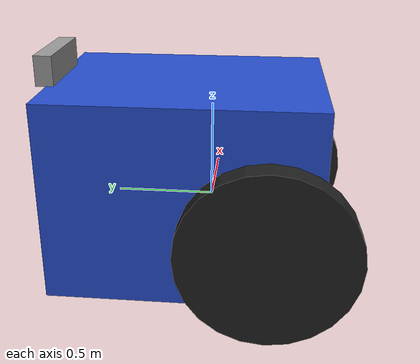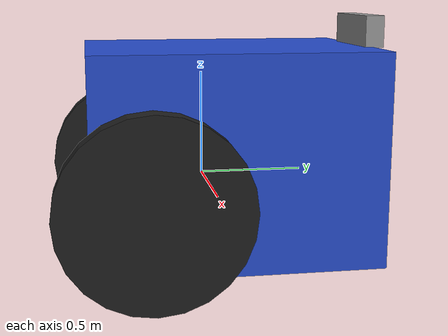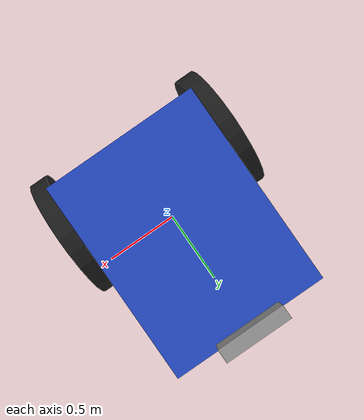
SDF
<?xml version='1.0'?>
<sdf version='1.6'>
  <model name='vehicle_model'>
    <link name='link_1'>
      <pose frame=''>0 0.11625 0.1275 0 -0 0</pose>
      <inertial>
        <mass>0.05</mass>
        <pose frame=''>0 0 0 0 -0 0</pose>
        <inertia>
          <ixx>1</ixx>
          <ixy>0</ixy>
          <ixz>0</ixz>
          <iyy>1</iyy>
          <iyz>0</iyz>
          <izz>1</izz>
        </inertia>
      </inertial>
      <self_collide>0</self_collide>
      <kinematic>0</kinematic>
      <gravity>1</gravity>
      <visual name='visual'>
        <pose frame=''>0 0 0 0 -0 0</pose>
        <geometry>
          <box>
            <size>1.03 1.35 1</size>
          </box>
        </geometry>
        <material>
          <lighting>1</lighting>
          <script>
            <uri>file://media/materials/scripts/gazebo.material</uri>
            <name>Gazebo/Blue</name>
          </script>
          <ambient>0.3 0.3 0.3 1</ambient>
          <diffuse>0.7 0.7 0.7 1</diffuse>
          <specular>0.01 0.01 0.01 1</specular>
          <emissive>0 0 0 1</emissive>
          <shader type='vertex'>
            <normal_map>__default__</normal_map>
          </shader>
        </material>
        <cast_shadows>1</cast_shadows>
        <transparency>0</transparency>
      </visual>
      <visual name='ModelPreview_0::link_1::visual_1'>
        <pose frame=''>0 0 0 0 -0 0</pose>
        <geometry>
          <box>
            <size>1.03 1.35 1</size>
          </box>
        </geometry>
        <material>
          <lighting>1</lighting>
          <script>
            <uri>file://media/materials/scripts/gazebo.material</uri>
            <name>Gazebo/Grey</name>
          </script>
          <ambient>0.3 0.3 0.3 1</ambient>
          <diffuse>0.7 0.7 0.7 1</diffuse>
          <specular>0.01 0.01 0.01 1</specular>
          <emissive>0 0 0 1</emissive>
          <shader type='vertex'>
            <normal_map>__default__</normal_map>
          </shader>
        </material>
        <cast_shadows>1</cast_shadows>
        <transparency>0</transparency>
      </visual>
      <collision name='collision'>
        <laser_retro>0</laser_retro>
        <max_contacts>10</max_contacts>
        <pose frame=''>0 0 0 0 -0 0</pose>
        <geometry>
          <box>
            <size>1.03 1.35 1</size>
          </box>
        </geometry>
        <surface>
          <friction>
            <ode>
              <mu>1</mu>
              <mu2>1</mu2>
              <fdir1>0 0 0</fdir1>
              <slip1>0</slip1>
              <slip2>0</slip2>
            </ode>
            <torsional>
              <coefficient>1</coefficient>
              <patch_radius>0</patch_radius>
              <surface_radius>0</surface_radius>
              <use_patch_radius>1</use_patch_radius>
              <ode>
                <slip>0</slip>
              </ode>
            </torsional>
          </friction>
          <bounce>
            <restitution_coefficient>0</restitution_coefficient>
            <threshold>1e+06</threshold>
          </bounce>
          <contact>
            <collide_without_contact>0</collide_without_contact>
            <collide_without_contact_bitmask>1</collide_without_contact_bitmask>
            <collide_bitmask>1</collide_bitmask>
            <ode>
              <soft_cfm>0</soft_cfm>
              <soft_erp>0.2</soft_erp>
              <kp>1e+13</kp>
              <kd>1</kd>
              <max_vel>0.01</max_vel>
              <min_depth>0</min_depth>
            </ode>
            <bullet>
              <split_impulse>1</split_impulse>
              <split_impulse_penetration_threshold>-0.01</split_impulse_penetration_threshold>
              <soft_cfm>0</soft_cfm>
              <soft_erp>0.2</soft_erp>
              <kp>1e+13</kp>
              <kd>1</kd>
            </bullet>
          </contact>
        </surface>
      </collision>
    </link>
    <link name='link_0'>
      <pose frame=''>0.6 -0.28375 -0.0425 0 -0 0</pose>
      <inertial>
        <mass>5</mass>
        <pose frame=''>0 0 0 0 1.57079 0</pose>
        <inertia>
          <ixx>1</ixx>
          <ixy>0</ixy>
          <ixz>0</ixz>
          <iyy>1</iyy>
          <iyz>0</iyz>
          <izz>1</izz>
        </inertia>
      </inertial>
      <self_collide>0</self_collide>
      <kinematic>0</kinematic>
      <visual name='visual'>
        <pose frame=''>0 0 0 0 1.57079 0</pose>
        <geometry>
          <cylinder>
            <radius>0.44</radius>
            <length>0.127562</length>
          </cylinder>
        </geometry>
        <material>
          <lighting>1</lighting>
          <script>
            <uri>file://media/materials/scripts/gazebo.material</uri>
            <name>Gazebo/Black</name>
          </script>
          <ambient>0.3 0.3 0.3 1</ambient>
          <diffuse>0.7 0.7 0.7 1</diffuse>
          <specular>0.01 0.01 0.01 1</specular>
          <emissive>0 0 0 1</emissive>
          <shader type='vertex'>
            <normal_map>__default__</normal_map>
          </shader>
        </material>
        <cast_shadows>1</cast_shadows>
        <transparency>0</transparency>
      </visual>
      <collision name='collision'>
        <laser_retro>0</laser_retro>
        <max_contacts>10</max_contacts>
        <pose frame=''>0 0 0 0 1.57079 0</pose>
        <geometry>
          <cylinder>
            <radius>0.44</radius>
            <length>0.127562</length>
          </cylinder>
        </geometry>
        <surface>
          <friction>
            <ode>
              <mu>1</mu>
              <mu2>1</mu2>
              <fdir1>0 0 0</fdir1>
              <slip1>0</slip1>
              <slip2>0</slip2>
            </ode>
            <torsional>
              <coefficient>1</coefficient>
              <patch_radius>0</patch_radius>
              <surface_radius>0</surface_radius>
              <use_patch_radius>1</use_patch_radius>
              <ode>
                <slip>0</slip>
              </ode>
            </torsional>
          </friction>
          <bounce>
            <restitution_coefficient>0</restitution_coefficient>
            <threshold>1e+06</threshold>
          </bounce>
          <contact>
            <collide_without_contact>0</collide_without_contact>
            <collide_without_contact_bitmask>1</collide_without_contact_bitmask>
            <collide_bitmask>1</collide_bitmask>
            <ode>
              <soft_cfm>0</soft_cfm>
              <soft_erp>0.2</soft_erp>
              <kp>1e+13</kp>
              <kd>1</kd>
              <max_vel>0.01</max_vel>
              <min_depth>0</min_depth>
            </ode>
            <bullet>
              <split_impulse>1</split_impulse>
              <split_impulse_penetration_threshold>-0.01</split_impulse_penetration_threshold>
              <soft_cfm>0</soft_cfm>
              <soft_erp>0.2</soft_erp>
              <kp>1e+13</kp>
              <kd>1</kd>
            </bullet>
          </contact>
        </surface>
      </collision>
    </link>
    <link name='link_0_clone'>
      <pose frame=''>-0.6 -0.30375 -0.0425 0 -0 0</pose>
      <inertial>
        <mass>5</mass>
        <pose frame=''>0 0 0 0 1.57079 0</pose>
        <inertia>
          <ixx>1</ixx>
          <ixy>0</ixy>
          <ixz>0</ixz>
          <iyy>1</iyy>
          <iyz>0</iyz>
          <izz>1</izz>
        </inertia>
      </inertial>
      <self_collide>0</self_collide>
      <kinematic>0</kinematic>
      <visual name='visual'>
        <pose frame=''>0 0 0 0 1.57079 0</pose>
        <geometry>
          <cylinder>
            <radius>0.44</radius>
            <length>0.127562</length>
          </cylinder>
        </geometry>
        <material>
          <lighting>1</lighting>
          <script>
            <uri>file://media/materials/scripts/gazebo.material</uri>
            <name>Gazebo/Black</name>
          </script>
          <ambient>0.3 0.3 0.3 1</ambient>
          <diffuse>0.7 0.7 0.7 1</diffuse>
          <specular>0.01 0.01 0.01 1</specular>
          <emissive>0 0 0 1</emissive>
          <shader type='vertex'>
            <normal_map>__default__</normal_map>
          </shader>
        </material>
        <cast_shadows>1</cast_shadows>
        <transparency>0</transparency>
      </visual>
      <collision name='collision'>
        <laser_retro>0</laser_retro>
        <max_contacts>10</max_contacts>
        <pose frame=''>0 0 0 0 1.57079 0</pose>
        <geometry>
          <cylinder>
            <radius>0.44</radius>
            <length>0.127562</length>
          </cylinder>
        </geometry>
        <surface>
          <friction>
            <ode>
              <mu>1</mu>
              <mu2>1</mu2>
              <fdir1>0 0 0</fdir1>
              <slip1>0</slip1>
              <slip2>0</slip2>
            </ode>
            <torsional>
              <coefficient>1</coefficient>
              <patch_radius>0</patch_radius>
              <surface_radius>0</surface_radius>
              <use_patch_radius>1</use_patch_radius>
              <ode>
                <slip>0</slip>
              </ode>
            </torsional>
          </friction>
          <bounce>
            <restitution_coefficient>0</restitution_coefficient>
            <threshold>1e+06</threshold>
          </bounce>
          <contact>
            <collide_without_contact>0</collide_without_contact>
            <collide_without_contact_bitmask>1</collide_without_contact_bitmask>
            <collide_bitmask>1</collide_bitmask>
            <ode>
              <soft_cfm>0</soft_cfm>
              <soft_erp>0.2</soft_erp>
              <kp>1e+13</kp>
              <kd>1</kd>
              <max_vel>0.01</max_vel>
              <min_depth>0</min_depth>
            </ode>
            <bullet>
              <split_impulse>1</split_impulse>
              <split_impulse_penetration_threshold>-0.01</split_impulse_penetration_threshold>
              <soft_cfm>0</soft_cfm>
              <soft_erp>0.2</soft_erp>
              <kp>1e+13</kp>
              <kd>1</kd>
            </bullet>
          </contact>
        </surface>
      </collision>
    </link>
    <link name='link_2'>
      <pose frame=''>-0 0.47125 -0.0425 0 -0 0</pose>
      <inertial>
        <mass>5</mass>
        <pose frame=''>0 0 0 0 -0 0</pose>
        <inertia>
          <ixx>1</ixx>
          <ixy>0</ixy>
          <ixz>0</ixz>
          <iyy>1</iyy>
          <iyz>0</iyz>
          <izz>1</izz>
        </inertia>
      </inertial>
      <self_collide>0</self_collide>
      <kinematic>0</kinematic>
      <visual name='visual'>
        <pose frame=''>0 0 0 0 -0 0</pose>
        <geometry>
          <sphere>
            <radius>0.44</radius>
          </sphere>
        </geometry>
        <material>
          <lighting>1</lighting>
          <script>
            <uri>file://media/materials/scripts/gazebo.material</uri>
            <name>Gazebo/Blue</name>
          </script>
          <ambient>0.3 0.3 0.3 1</ambient>
          <diffuse>0.7 0.7 0.7 1</diffuse>
          <specular>0.01 0.01 0.01 1</specular>
          <emissive>0 0 0 1</emissive>
          <shader type='vertex'>
            <normal_map>__default__</normal_map>
          </shader>
        </material>
        <cast_shadows>1</cast_shadows>
        <transparency>0</transparency>
      </visual>
      <collision name='collision'>
        <laser_retro>0</laser_retro>
        <max_contacts>10</max_contacts>
        <pose frame=''>0 0 0 0 -0 0</pose>
        <geometry>
          <sphere>
            <radius>0.44</radius>
          </sphere>
        </geometry>
        <surface>
          <friction>
            <ode>
              <mu>0.05</mu>
              <mu2>0.05</mu2>
              <fdir1>0 0 0</fdir1>
              <slip1>1</slip1>
              <slip2>1</slip2>
            </ode>
            <torsional>
              <coefficient>1</coefficient>
              <patch_radius>0</patch_radius>
              <surface_radius>0</surface_radius>
              <use_patch_radius>1</use_patch_radius>
              <ode>
                <slip>0</slip>
              </ode>
            </torsional>
          </friction>
          <bounce>
            <restitution_coefficient>0</restitution_coefficient>
            <threshold>1e+06</threshold>
          </bounce>
          <contact>
            <collide_without_contact>0</collide_without_contact>
            <collide_without_contact_bitmask>1</collide_without_contact_bitmask>
            <collide_bitmask>1</collide_bitmask>
            <ode>
              <soft_cfm>0</soft_cfm>
              <soft_erp>0.2</soft_erp>
              <kp>1e+13</kp>
              <kd>1</kd>
              <max_vel>0.01</max_vel>
              <min_depth>0</min_depth>
            </ode>
            <bullet>
              <split_impulse>1</split_impulse>
              <split_impulse_penetration_threshold>-0.01</split_impulse_penetration_threshold>
              <soft_cfm>0</soft_cfm>
              <soft_erp>0.2</soft_erp>
              <kp>1e+13</kp>
              <kd>1</kd>
            </bullet>
          </contact>
        </surface>
      </collision>
    </link>

    <model name='vehicle_camera'>
	<pose frame=''>0 0.8 0.7 0 -0 1.570796326794</pose>
      <link name='link_0'>
        <inertial>
          <mass>0.00603968</mass>
          <inertia>
            <ixx>1.55691e-05</ixx>
            <ixy>0</ixy>
            <ixz>0</ixz>
            <iyy>0.000110152</iyy>
            <iyz>0</iyz>
            <izz>0.00010281</izz>
          </inertia>
        </inertial>
        <visual name='visual'>
          <pose frame=''>0 0 0 0 -0 0</pose>
          <geometry>
            <box>
              <size>0.090403 0.442828 0.150878</size>
            </box>
          </geometry>
          <material>
            <lighting>1</lighting>
            <script>
              <uri>file://media/materials/scripts/gazebo.material</uri>
              <name>Gazebo/Grey</name>
            </script>
            <ambient>0.3 0.3 0.3 1</ambient>
            <diffuse>0.7 0.7 0.7 1</diffuse>
            <specular>0.01 0.01 0.01 1</specular>
            <emissive>0 0 0 1</emissive>
          </material>
          <cast_shadows>1</cast_shadows>
          <transparency>0</transparency>
        </visual>
        <collision name='collision'>
          <laser_retro>0</laser_retro>
          <max_contacts>10</max_contacts>
          <pose frame=''>0 0 0 0 -0 0</pose>
          <geometry>
            <box>
              <size>0.090403 0.442828 0.150878</size>
            </box>
          </geometry>
          <surface>
            <friction>
              <ode>
                <mu>1</mu>
                <mu2>1</mu2>
                <fdir1>0 0 0</fdir1>
                <slip1>0</slip1>
                <slip2>0</slip2>
              </ode>
              <torsional>
                <coefficient>1</coefficient>
                <patch_radius>0</patch_radius>
                <surface_radius>0</surface_radius>
                <use_patch_radius>1</use_patch_radius>
                <ode>
                  <slip>0</slip>
                </ode>
              </torsional>
            </friction>
            <bounce>
              <restitution_coefficient>0</restitution_coefficient>
              <threshold>1e+06</threshold>
            </bounce>
            <contact>
              <collide_without_contact>0</collide_without_contact>
              <collide_without_contact_bitmask>1</collide_without_contact_bitmask>
              <collide_bitmask>1</collide_bitmask>
              <ode>
                <soft_cfm>0</soft_cfm>
                <soft_erp>0.2</soft_erp>
                <kp>1e+13</kp>
                <kd>1</kd>
                <max_vel>0.01</max_vel>
                <min_depth>0</min_depth>
              </ode>
              <bullet>
                <split_impulse>1</split_impulse>
                <split_impulse_penetration_threshold>-0.01</split_impulse_penetration_threshold>
                <soft_cfm>0</soft_cfm>
                <soft_erp>0.2</soft_erp>
                <kp>1e+13</kp>
                <kd>1</kd>
              </bullet>
            </contact>
          </surface>
        </collision>
        <sensor name='vehicle_sensor' type='camera'>
          <update_rate>5</update_rate>
          <camera name='vehicle_cam'>
            <pose frame=''>0 0 0 0 -0 0</pose>
            <horizontal_fov>1.39626</horizontal_fov>
            <image>
              <width>200</width>
              <height>200</height>
              <format>R8G8B8</format>
            </image>
            <clip>
              <near>0.02</near>
              <far>300</far>
            </clip>
          </camera>
          <plugin name='camera_controller' filename='libgazebo_ros_camera.so'>
            <alwaysOn>true</alwaysOn>
            <updateRate>0.0</updateRate>
            <cameraName>vehicle_cam</cameraName>
            <imageTopicName>image_raw</imageTopicName>
            <cameraInfoTopicName>camera_info</cameraInfoTopicName>
            <frameName>link_0</frameName>
            <hackBaseline>0.07</hackBaseline>
          </plugin>
        </sensor>
      </link>
      <static>0</static>
      <allow_auto_disable>1</allow_auto_disable>
      <pose frame=''>0.185754 2.06711 5e-06 0 -0 0</pose>
    </model>
    <joint name='link_1_JOINT_0_0' type='fixed'>
      <parent>link_1</parent>
      <child>vehicle_camera::link_0</child>
      <pose frame=''>0 0 0 0 -0 0</pose>
      <physics>
        <ode>
          <limit>
            <cfm>0</cfm>
            <erp>0.2</erp>
          </limit>
          <suspension>
            <cfm>0</cfm>
            <erp>0.2</erp>
          </suspension>
        </ode>
      </physics>
    </joint>
    <joint name='link_1_JOINT_0' type='revolute'>
      <parent>link_1</parent>
      <child>link_0_clone</child>
      <pose frame=''>0 0 0 0 -0 0</pose>
      <axis>
        <xyz>-1 0 0</xyz>
        <use_parent_model_frame>0</use_parent_model_frame>
        <limit>
          <lower>-1.79769e+308</lower>
          <upper>1.79769e+308</upper>
          <effort>-1</effort>
          <velocity>-1</velocity>
        </limit>
        <dynamics>
          <spring_reference>0</spring_reference>
          <spring_stiffness>0</spring_stiffness>
          <damping>0</damping>
          <friction>0</friction>
        </dynamics>
      </axis>
      <physics>
        <ode>
          <limit>
            <cfm>0</cfm>
            <erp>0.2</erp>
          </limit>
          <suspension>
            <cfm>0</cfm>
            <erp>0.2</erp>
          </suspension>
        </ode>
      </physics>
    </joint>
    <joint name='link_1_JOINT_1' type='revolute'>
      <parent>link_1</parent>
      <child>link_0</child>
      <pose frame=''>-0.11 0 0 0 -0 0</pose>
      <axis>
        <xyz>1 0 0</xyz>
        <use_parent_model_frame>0</use_parent_model_frame>
        <limit>
          <lower>-1.79769e+308</lower>
          <upper>1.79769e+308</upper>
          <effort>-1</effort>
          <velocity>-1</velocity>
        </limit>
        <dynamics>
          <spring_reference>0</spring_reference>
          <spring_stiffness>0</spring_stiffness>
          <damping>0</damping>
          <friction>0</friction>
        </dynamics>
      </axis>
      <physics>
        <ode>
          <limit>
            <cfm>0</cfm>
            <erp>0.2</erp>
          </limit>
          <suspension>
            <cfm>0</cfm>
            <erp>0.2</erp>
          </suspension>
        </ode>
      </physics>
    </joint>
    <joint name='link_2_JOINT_2' type='ball'>
      <parent>link_1</parent>
      <child>link_2</child>
      <pose frame=''>0 0 0 0 -0 0</pose>
      <physics>
        <ode>
          <limit>
            <cfm>0</cfm>
            <erp>0.2</erp>
          </limit>
          <suspension>
            <cfm>0</cfm>
            <erp>0.2</erp>
          </suspension>
        </ode>
      </physics>
    </joint>
    <static>0</static>
    <allow_auto_disable>1</allow_auto_disable>
    <plugin name='differential_drive_controller' filename='libgazebo_ros_diff_drive.so'>
      <alwaysOn>true</alwaysOn>
      <updateRate>5</updateRate>
      <leftJoint>link_1_JOINT_0</leftJoint>
      <rightJoint>link_1_JOINT_1</rightJoint>
      <wheelSeparation>1.04</wheelSeparation>
      <wheelDiameter>0.44</wheelDiameter>
      <torque>10</torque>
      <commandTopic>cmd_vel</commandTopic>
      <odometryTopic>odom</odometryTopic>
      <odometryFrame>odom</odometryFrame>
      <robotBaseFrame>base_footprint</robotBaseFrame>
    </plugin>
  </model>
</sdf>
